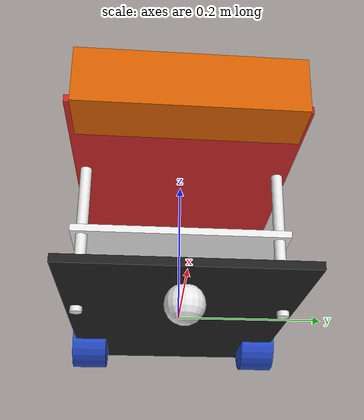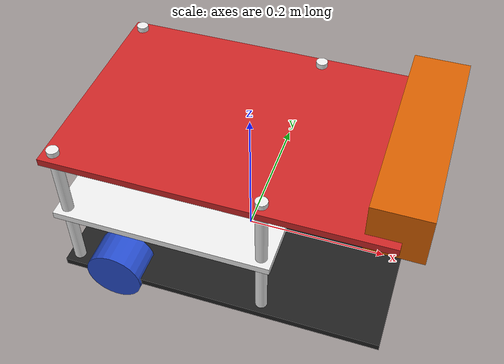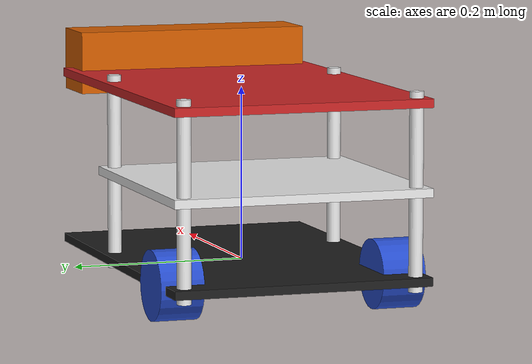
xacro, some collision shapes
<?xml version='1.0'?>

<robot name="yemenbot" xmlns:xacro="http://www.ros.org/wiki/xacro">

  <xacro:property name="cameraSize" value="0.05"/>
  <xacro:property name="cameraMass" value="0.1"/>
 <xacro:property  name="cam_px" value="0.25"/>
  <xacro:property name="cam_py" value="0"/>
  <xacro:property name="cam_pz" value="0.23" />
   <xacro:property name="cam_or" value="0" />
  <xacro:property name="cam_op" value="0"/>
  <xacro:property name="cam_oy" value="0"/>
  <xacro:property name="M_PI" value="3.14" />

  <xacro:include filename="$(find yemenbot)/urdf/yemenbot.gazebo" />
  <xacro:include filename="$(find yemenbot)/urdf/materials.xacro" />
  <xacro:include filename="$(find yemenbot)/urdf/macros.xacro" />

  <link name='chassis'>
    <pose>0 0 0.06 0 0 0</pose>

    <inertial>
      <mass value="5.0"/>
      <origin xyz="0.0 0 0.06" rpy=" 0 0 0"/>
      <inertia
          ixx="0.04" ixy="0" ixz="0"
          iyy="0.1" iyz="0"
          izz="0.1"
      />
    </inertial>

    <collision name='collision'>
      <geometry>
        <box size=".45 .3 .01"/>
      </geometry>
    </collision>

    <visual name='chassis_visual'>
      <origin xyz="0 0 0" rpy=" 0 0 0"/>
      <geometry>
        <box size=".45 .3 .01"/>
      </geometry>
      <material name="black"/>
    </visual>

    <collision name='caster_collision'>
      <origin xyz="0.15 0 -0.025" rpy=" 0 0 0"/>
      <geometry>
        <sphere radius="0.025"/>
      </geometry>
      <surface>
        <friction>
          <ode>
            <mu>0</mu>
            <mu2>0</mu2>
            <slip1>1.0</slip1>
            <slip2>1.0</slip2>
          </ode>
        </friction>
      </surface>
    </collision>

    <visual name='caster_visual'>
      <origin xyz="0.15 0 -0.025" rpy=" 0 0 0"/>
      <geometry>
        <sphere radius="0.025"/>
      </geometry>
      <material name="white"/>
    </visual>

    <collision name='colume1_collision'>
      <origin xyz="0.06 -0.135 0.1" rpy=" 0 0 0"/>
      <geometry>
        <cylinder radius="0.008" length="0.225"/>
      </geometry>
    </collision>

    <visual name='colume1_visual'>
      <origin xyz="0.06 -0.135 0.1" rpy=" 0 0 0"/>
      <geometry>
        <cylinder radius="0.008" length="0.225"/>
      </geometry>
      <material name="white"/>
    </visual>

      <collision name='colume2_collision'>
      <origin xyz="0.06 0.135 0.1" rpy=" 0 0 0"/>
      <geometry>
        <cylinder radius="0.008" length="0.225"/>
      </geometry>
    </collision>

    <visual name='colume2_visual'>
      <origin xyz="0.06 0.135 0.1" rpy=" 0 0 0"/>
      <geometry>
        <cylinder radius="0.008" length="0.225"/>
      </geometry>
      <material name="white"/>
    </visual>

      <collision name='colume3_collision'>
      <origin xyz="-0.21 0.135 0.1" rpy=" 0 0 0"/>
      <geometry>
        <cylinder radius="0.008" length="0.225"/>
      </geometry>
    </collision>

    <visual name='colume3_visual'>
      <origin xyz="-0.21 0.135 0.1" rpy=" 0 0 0"/>
      <geometry>
        <cylinder radius="0.008" length="0.225"/>
      </geometry>
      <material name="white"/>
    </visual>

      <collision name='colume4_collision'>
      <origin xyz="-0.21 -0.135 0.1" rpy=" 0 0 0"/>
      <geometry>
        <cylinder radius="0.008" length="0.225"/>
      </geometry>
    </collision>

    <visual name='colume4_visual'>
      <origin xyz="-0.21 -0.135 0.1" rpy=" 0 0 0"/>
      <geometry>
        <cylinder radius="0.008" length="0.225"/>
      </geometry>
      <material name="white"/>
    </visual>

  </link>

   <joint name="middle_link_joint" type="fixed">
      <origin xyz="-0.075 0 0.1" rpy="0 0 0"/>
      <parent link="chassis"/>
      <child link="middle_link" />
    </joint>

  <link name='middle_link'>
    <inertial>
      <mass value="5.0"/>
      <origin xyz="0.0 0 0.0" rpy=" 0 0 0"/>
      <inertia
          ixx="0.04" ixy="0" ixz="0"
          iyy="0.1" iyz="0"
          izz="0.1"
      />
    </inertial>

    <collision name='middle_link_collision'>
    <origin xyz="0 0 0" rpy=" 0 0 0"/>
      <geometry>
        <box size=".30 .3 .01"/>
      </geometry>
    </collision>

    <visual name='middle_link_visual'>
      <origin xyz="0 0 0" rpy=" 0 0 0"/>
      <geometry>
        <box size=".30 .3 .01"/>
      </geometry>
      <material name="white"/>
    </visual>
  </link>

  <joint name="up_link_joint" type="fixed">
      <origin xyz="0 0 0.2" rpy="0 0 0"/>
      <parent link="chassis"/>
      <child link="up_link" />
    </joint>

  <link name='up_link'>
    <inertial>
      <mass value="5.0"/>
      <origin xyz="0.0 0 0.0" rpy="0 0 0"/>
      <inertia
          ixx="0.04" ixy="0" ixz="0"
          iyy="0.1" iyz="0"
          izz="0.1"
      />
    </inertial>

    <collision name='up_link_collision'>
    <origin xyz="0 0 0" rpy=" 0 0 0"/>
      <geometry>
        <box size=".45 .3 .01"/>
      </geometry>
    </collision>

    <visual name='up_link_visual'>
      <origin xyz="0 0 0" rpy=" 0 0 0"/>
      <geometry>
        <box size=".45 .3 .01"/>
      </geometry>
      <material name="red"/>
    </visual>
  </link>

   <joint name="camera_rgb_joint" type="fixed">
      <origin xyz="${cam_px} ${cam_py} ${cam_pz}" rpy="${cam_or} ${cam_op} ${cam_oy}"/>
      <parent link="chassis"/>
      <child link="camera_rgb_frame" />
    </joint>
    <link name="camera_rgb_frame">
      <inertial>
        <mass value="0.001" />
        <origin xyz="0 0 0" />
        <inertia ixx="0.0001" ixy="0.0" ixz="0.0"
                 iyy="0.0001" iyz="0.0"
                 izz="0.0001" />
      </inertial>
    </link>
    <joint name="camera_rgb_optical_joint" type="fixed">
      <origin xyz="0 0 0" rpy="${-M_PI/2} 0 ${-M_PI/2}" />
      <parent link="camera_rgb_frame" />
      <child link="camera_rgb_optical_frame" />
    </joint>
    <link name="camera_rgb_optical_frame">
      <inertial>
        <mass value="0.001" />
        <origin xyz="0 0 0" />
        <inertia ixx="0.0001" ixy="0.0" ixz="0.0"
                 iyy="0.0001" iyz="0.0"
                 izz="0.0001" />
      </inertial>
    </link>

  <joint name="camera_joint" type="fixed">
    <origin xyz="-0.031 ${-cam_py} -0.016" rpy="0 0 0"/>
    <parent link="camera_rgb_frame"/>
    <child link="camera_link"/>
  </joint>
    <link name="camera_link">
    <visual>
     <origin xyz="0 0 0" rpy="0 0 0"/>
      <geometry>
       <mesh filename="package://yemenbot/meshes/kinect.dae"/>
      </geometry>
    </visual>
	  <collision>
      <origin xyz="0.0 0.0 0.0" rpy="0 0 0"/>
	    <geometry>
	      <box size="0.07271 0.27794 0.073"/>
	    </geometry>
	  </collision>
    <inertial>
      <mass value="0.001" />
      <origin xyz="0 0 0" />
      <inertia ixx="0.0001" ixy="0.0" ixz="0.0"
               iyy="0.0001" iyz="0.0"
               izz="0.0001" />
    </inertial>
  </link>

	<joint name="camera_depth_joint" type="fixed">
	  <origin xyz="0 ${2 * -cam_py} 0" rpy="0 0 0" />
	  <parent link="camera_rgb_frame" />
	  <child link="camera_depth_frame" />
	</joint>
	<link name="camera_depth_frame">
    <inertial>
      <mass value="0.001" />
      <origin xyz="0 0 0" />
      <inertia ixx="0.0001" ixy="0.0" ixz="0.0"
               iyy="0.0001" iyz="0.0"
               izz="0.0001" />
    </inertial>
	</link>
	<joint name="camera_depth_optical_joint" type="fixed">
	  <origin xyz="0 0 0" rpy="${-M_PI/2} 0 ${-M_PI/2}" />
	  <parent link="camera_depth_frame" />
	  <child link="camera_depth_optical_frame" />
	</joint>
	<link name="camera_depth_optical_frame">
    <inertial>
      <mass value="0.001" />
      <origin xyz="0 0 0" />
      <inertia ixx="0.0001" ixy="0.0" ixz="0.0"
               iyy="0.0001" iyz="0.0"
               izz="0.0001" />
    </inertial>
	</link>

  <link name="left_wheel">
    <!--origin xyz="0.1 0.13 0.1" rpy="0 1.5707 1.5707"/-->
    <collision name="collision">
      <origin xyz="0 0 0" rpy="0 1.5707 1.5707"/>
      <geometry>
        <cylinder radius="0.04" length="0.05"/>
      </geometry>
    </collision>
    <visual name="left_wheel_visual">
      <origin xyz="0 0 0" rpy="0 1.5707 1.5707"/>
      <geometry>
        <cylinder radius="0.04" length="0.05"/>
      </geometry>
       <material name="blue"/>
    </visual>
    <inertial>
      <origin xyz="0 0 0" rpy="0 1.5707 1.5707"/>
      <mass value="5"/>
      <inertia
        ixx=".1" ixy="0.0" ixz="0.0"
        iyy=".1" iyz="0.0"
        izz=".1"/>
    </inertial>
  </link>

  <link name="right_wheel">
    <!--origin xyz="0.1 -0.13 0.1" rpy="0 1.5707 1.5707"/-->
    <collision name="collision">
      <origin xyz="0 0 0" rpy="0 1.5707 1.5707"/>
      <geometry>
        <cylinder radius="0.04" length="0.05"/>
      </geometry>
    </collision>
    <visual name="right_wheel_visual">
      <origin xyz="0 0 0" rpy="0 1.5707 1.5707"/>
      <geometry>
        <cylinder radius="0.04" length="0.05"/>
      </geometry>
       <material name="blue"/>
    </visual>
    <inertial>
      <origin xyz="0 0 0" rpy="0 1.5707 1.5707"/>
      <mass value="5"/>
      <inertia
        ixx=".1" ixy="0.0" ixz="0.0"
        iyy=".1" iyz="0.0"
        izz=".1"/>
    </inertial>
  </link>

  <joint type="continuous" name="left_wheel_hinge">
    <!--origin xyz="0 0.15 0" rpy="0 0 0"/-->
    <origin xyz="-0.15 0.13 0" rpy="0 0 0"/>
    <child link="left_wheel"/>
    <parent link="chassis"/>
    <axis xyz="0 1 0" rpy="0 0 0"/>
    <limit effort="10000" velocity="1000"/>
    <joint_properties damping="1.0" friction="1.0"/>
  </joint>

  <joint type="continuous" name="right_wheel_hinge">
    <!--origin xyz="0 -0.15 0" rpy="0 0 0"/-->
    <origin xyz="-0.15 -0.13 0" rpy="0 0 0"/>
    <child link="right_wheel"/>
    <parent link="chassis"/>
    <axis xyz="0 1 0" rpy="0 0 0"/>
    <limit effort="10000" velocity="1000"/>
    <joint_properties damping="1.0" friction="1.0"/>
  </joint>
</robot>
